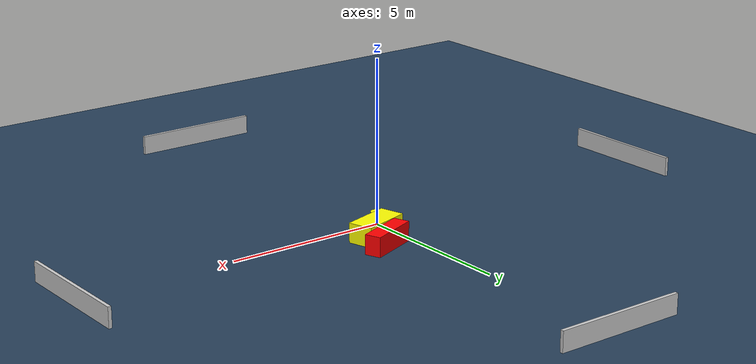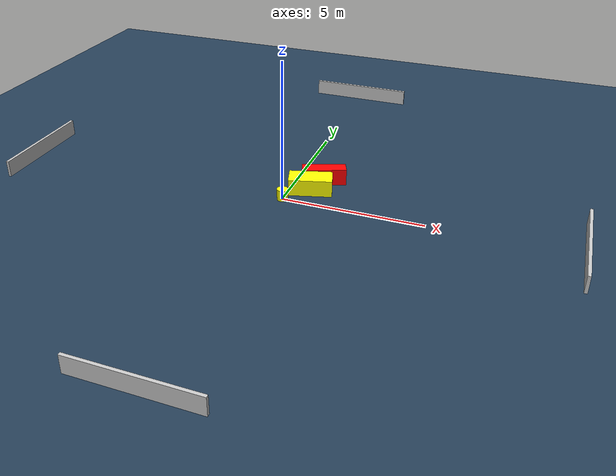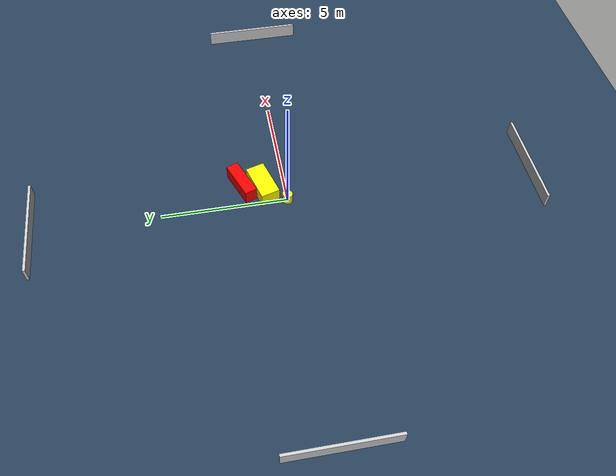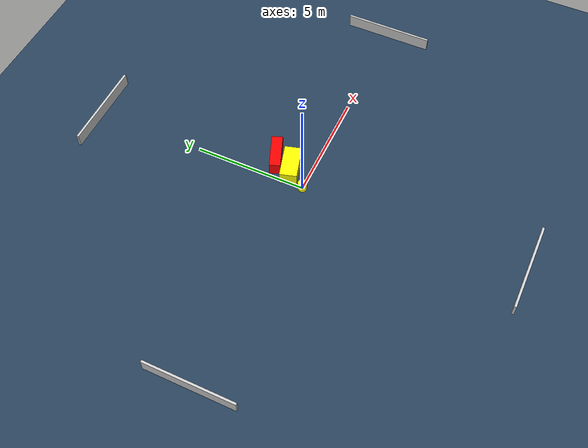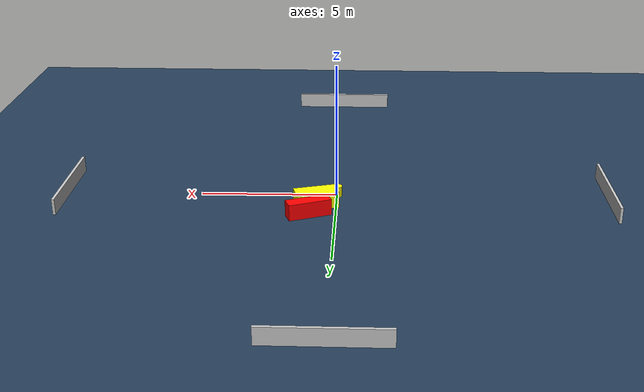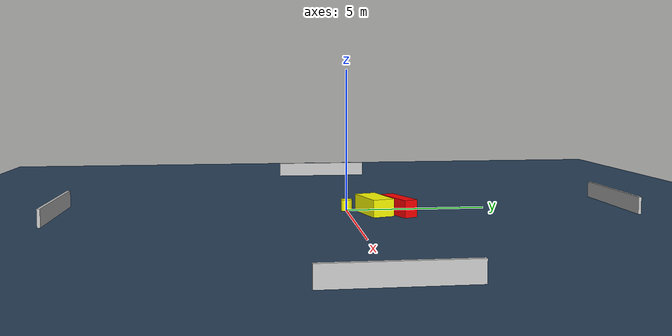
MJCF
<?xml version="1.0" ?>
<mujoco model="generated_environment">
  <option timestep="0.01" integrator="RK4" cone="elliptic"/>
  <default>
    <geom density="1"/>
  </default>
  <asset>
    <texture builtin="gradient" height="3072" name="skybox" rgb1="0.3 0.5 0.7" rgb2="0 0 0" type="skybox" width="512"/>
    <texture builtin="checker" height="300" name="groundplane" rgb1="0.2 0.3 0.4" rgb2="0.1 0.2 0.3" type="2d" width="300"/>
    <material name="groundplane" reflectance="0.2" texrepeat="5 5" texture="groundplane"/>
  </asset>
  <worldbody>
    <light dir="0 0 -1" directional="true" pos="0 0 1.5"/>
    <geom condim="3" friction="0.5 0.005 0.001" material="groundplane" name="floor" pos="0 0 0" size="0 0 0.05" type="plane"/>
    <body name="walls">
      <geom name="wall_1" condim="4" pos="-10.0 0.0 0.3" rgba="0.800000011920929 0.800000011920929 0.800000011920929 1.0" size="0.05 2.0 0.3" type="box"/>
      <geom name="wall_2" condim="4" pos="10.0 0.0 0.3" rgba="0.800000011920929 0.800000011920929 0.800000011920929 1.0" size="0.05 2.0 0.3" type="box"/>
      <geom name="wall_3" condim="4" pos="0.0 -10.0 0.3" rgba="0.800000011920929 0.800000011920929 0.800000011920929 1.0" size="2.0 0.05 0.3" type="box"/>
      <geom name="wall_4" condim="4" pos="0.0 10.0 0.3" rgba="0.800000011920929 0.800000011920929 0.800000011920929 1.0" size="2.0 0.05 0.3" type="box"/>
    </body>
    <body name="robot">
      <joint name="joint_x" type="slide" pos="0 0 0" axis="1 0 0"/>
      <joint name="joint_y" type="slide" pos="0 0 0" axis="0 1 0"/>
      <geom name="robot" type="cylinder" pos="0.0 0.0 0.2" size="0.2 0.2 0.0" mass="5.0" friction="1.0 0.005 0.0001" condim="4" rgba="1.0 1.0 0.0 1.0"/>
    </body>
    <body name="obstacle_1_movable">
      <geom name="obstacle_1_movable" condim="4" pos="0.7173417388377843 0.8838031362667503 0.3" euler="0 0 106.23219022804342" friction="0.0 0.005 0.001" rgba="1.0 1.0 0.0 1.0" size="0.38252476938069013 0.7699846605202301 0.3" type="box" mass="0.1"/>
      <joint type="free"/>
    </body>
    <body name="obstacle_2_static">
      <geom name="obstacle_2_static" condim="4" pos="0.9499053149233099 1.7024630754099195 0.3" euler="0 0 111.48237509533332" friction="0.0 0.005 0.001" rgba="1.0 0.0 0.0 1.0" size="0.24560435367568476 0.7900903192524866 0.3" type="box"/>
    </body>
  </worldbody>
  <actuator>
    <motor name="actuator_x" joint="joint_x" gear="1" ctrlrange="-1 1"/>
    <motor name="actuator_y" joint="joint_y" gear="1" ctrlrange="-1 1"/>
  </actuator>
</mujoco>
